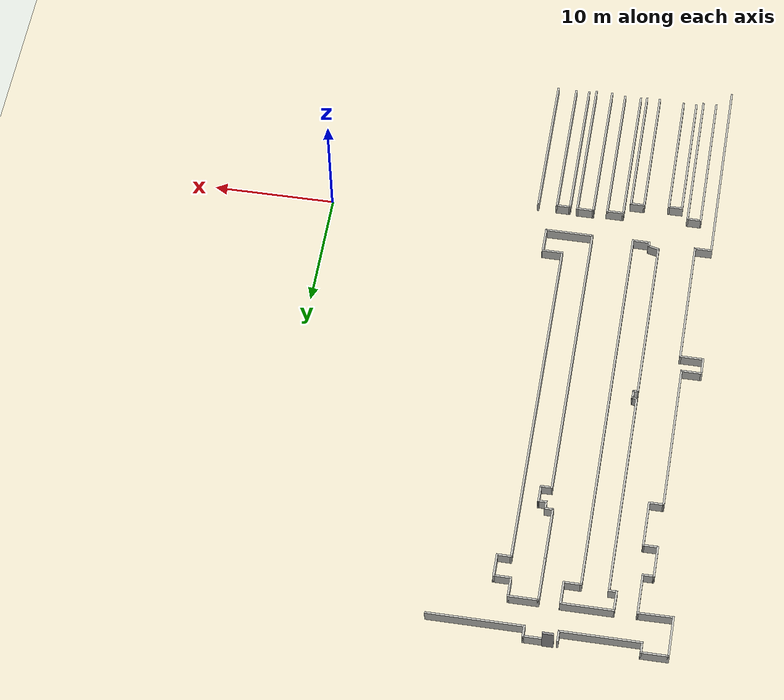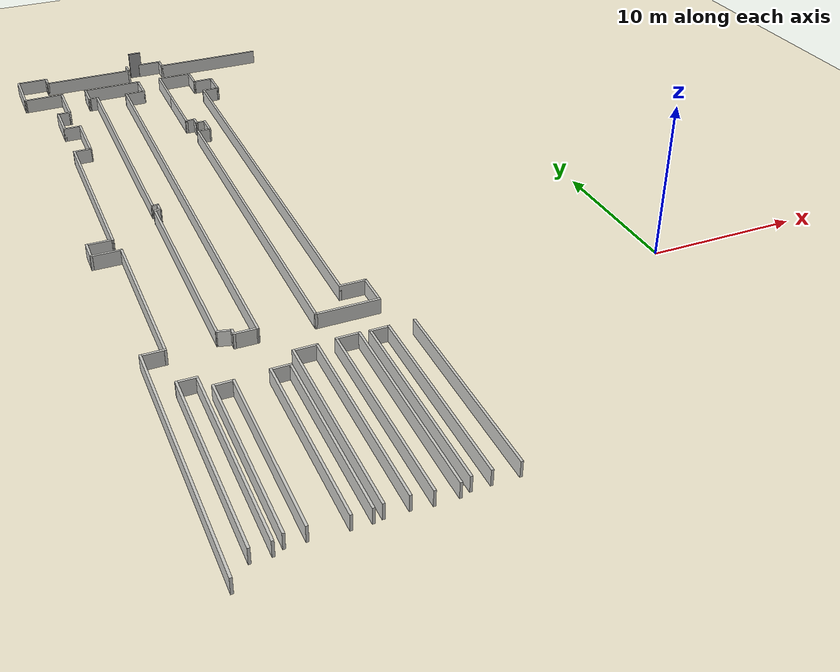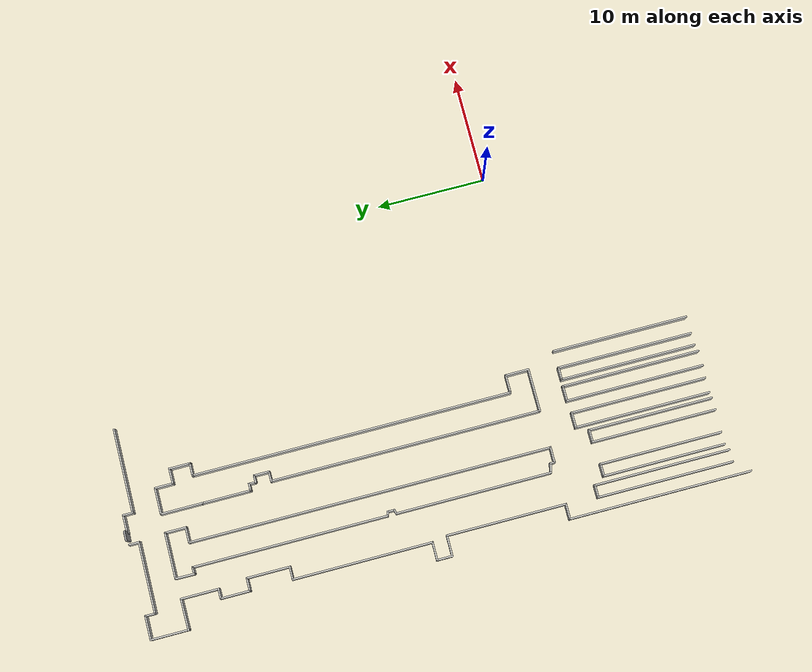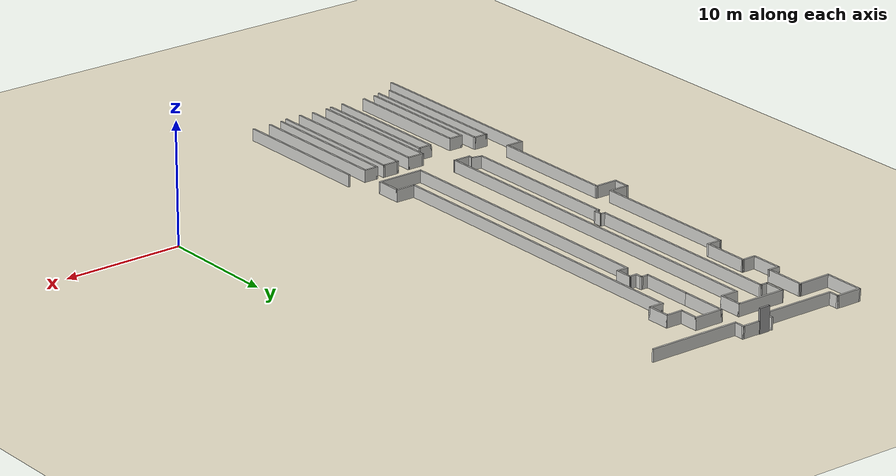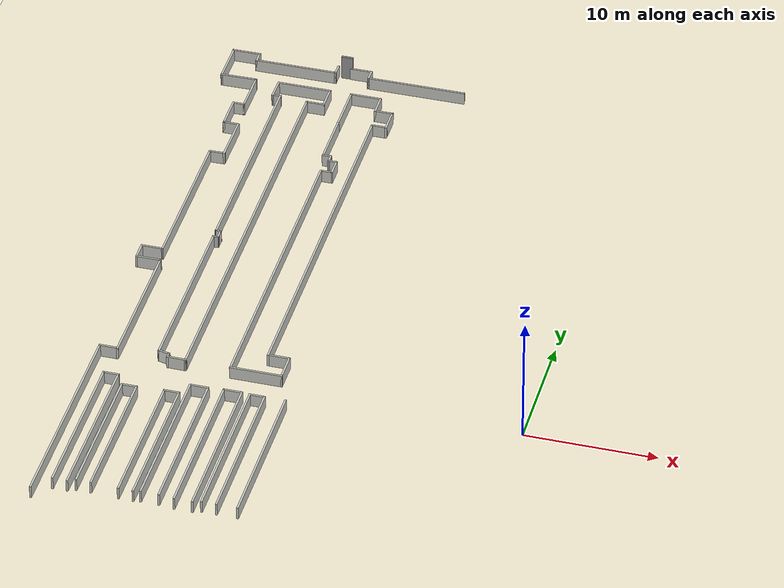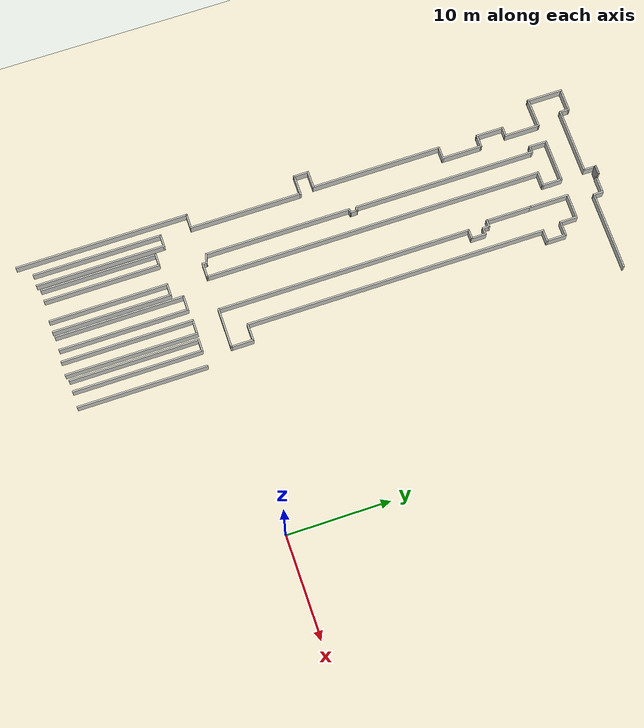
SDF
<sdf version="1.7">
 <world name="default">
  <model name="ground_plane">
   <static>1</static>
   <link name="link">
    <collision name="collision">
     <geometry><plane><normal>0 0 1</normal><size>100 100</size></plane></geometry>
     <surface><friction><ode><mu>100</mu><mu2>50</mu2></ode></friction></surface>
    </collision>
    <visual name="visual">
     <cast_shadows>0</cast_shadows>
     <geometry><plane><normal>0 0 1</normal><size>100 100</size></plane></geometry>
     <material>
      <ambient>0.85 0.82 0.72 1</ambient>
      <diffuse>0.95 0.92 0.82 1</diffuse>
      <specular>0.05 0.05 0.05 1</specular>
     </material>
    </visual>
   </link>
  </model>
  <model name="warehouse">
   <pose>0.004046 2.00696 0 0 -0 0</pose>
   <link name="Door_0">
    <collision name="Door_0_Collision">
     <geometry><box><size>0.9 0.17 2</size></box></geometry>
     <pose>0 0 1 0 -0 0</pose>
    </collision>
    <visual name="Door_0_Visual">
     <pose>0 0 1 0 -0 0</pose>
     <geometry><box><size>0.9 0.17 2</size></box></geometry>
     <material>
      <script><uri>file://media/materials/scripts/gazebo.material</uri><name>Gazebo/Grey</name></script>
     </material>
    </visual>
    <pose>-23.59 36.7086 0 0 -0 0</pose>
   </link>
   <link name="Wall_11">
    <collision name="Wall_11_Collision">
     <geometry><box><size>3.5 0.15 1</size></box></geometry>
     <pose>0 0 0.5 0 -0 0</pose>
    </collision>
    <visual name="Wall_11_Visual">
     <pose>0 0 0.5 0 -0 0</pose>
     <geometry><box><size>3.5 0.15 1</size></box></geometry>
     <material>
      <script><uri>file://media/materials/scripts/gazebo.material</uri><name>Gazebo/CeilingTiled</name></script>
      <ambient>1 1 1 1</ambient>
     </material>
     <meta><layer>0</layer></meta>
    </visual>
    <pose>-32.777 35.0175 0 0 -0 1.5708</pose>
   </link>
   <link name="Wall_111">
    <collision name="Wall_111_Collision">
     <geometry><box><size>16.75 0.15 1</size></box></geometry>
     <pose>0 0 0.5 0 -0 0</pose>
    </collision>
    <visual name="Wall_111_Visual">
     <pose>0 0 0.5 0 -0 0</pose>
     <geometry><box><size>16.75 0.15 1</size></box></geometry>
     <material>
      <script><uri>file://media/materials/scripts/gazebo.material</uri><name>Gazebo/CeilingTiled</name></script>
      <ambient>1 1 1 1</ambient>
     </material>
     <meta><layer>0</layer></meta>
    </visual>
    <pose>-31.983 -9.5225 0 0 -0 1.5708</pose>
   </link>
   <link name="Wall_112">
    <collision name="Wall_112_Collision">
     <geometry><box><size>1.5 0.15 1</size></box></geometry>
     <pose>0 0 0.5 0 -0 0</pose>
    </collision>
    <visual name="Wall_112_Visual">
     <pose>0 0 0.5 0 -0 0</pose>
     <geometry><box><size>1.5 0.15 1</size></box></geometry>
     <material>
      <script><uri>file://media/materials/scripts/gazebo.material</uri><name>Gazebo/CeilingTiled</name></script>
      <ambient>1 1 1 1</ambient>
     </material>
     <meta><layer>0</layer></meta>
    </visual>
    <pose>-31.308 -1.2225 0 0 -0 0</pose>
   </link>
   <link name="Wall_113">
    <collision name="Wall_113_Collision">
     <geometry><box><size>10.9806 0.15 1</size></box></geometry>
     <pose>0 0 0.5 0 -0 0</pose>
    </collision>
    <visual name="Wall_113_Visual">
     <pose>0 0 0.5 0 -0 0</pose>
     <geometry><box><size>10.9806 0.15 1</size></box></geometry>
     <material>
      <script><uri>file://media/materials/scripts/gazebo.material</uri><name>Gazebo/CeilingTiled</name></script>
      <ambient>1 1 1 1</ambient>
     </material>
     <meta><layer>0</layer></meta>
    </visual>
    <pose>-30.6285 4.1925 0 0 -0 1.56997</pose>
   </link>
   <link name="Wall_114">
    <collision name="Wall_114_Collision">
     <geometry><box><size>1.99967 0.15 1</size></box></geometry>
     <pose>0 0 0.5 0 -0 0</pose>
    </collision>
    <visual name="Wall_114_Visual">
     <pose>0 0 0.5 0 -0 0</pose>
     <geometry><box><size>1.99967 0.15 1</size></box></geometry>
     <material>
      <script><uri>file://media/materials/scripts/gazebo.material</uri><name>Gazebo/CeilingTiled</name></script>
      <ambient>1 1 1 1</ambient>
     </material>
     <meta><layer>0</layer></meta>
    </visual>
    <pose>-31.5485 9.608 0 0 -0 3.14105</pose>
   </link>
   <link name="Wall_115">
    <collision name="Wall_115_Collision">
     <geometry><box><size>1.51948 0.15 1</size></box></geometry>
     <pose>0 0 0.5 0 -0 0</pose>
    </collision>
    <visual name="Wall_115_Visual">
     <pose>0 0 0.5 0 -0 0</pose>
     <geometry><box><size>1.51948 0.15 1</size></box></geometry>
     <material>
      <script><uri>file://media/materials/scripts/gazebo.material</uri><name>Gazebo/CeilingTiled</name></script>
      <ambient>1 1 1 1</ambient>
     </material>
     <meta><layer>0</layer></meta>
    </visual>
    <pose>-32.4735 10.293 0 0 -0 1.57153</pose>
   </link>
   <link name="Wall_116">
    <collision name="Wall_116_Collision">
     <geometry><box><size>1.75033 0.15 1</size></box></geometry>
     <pose>0 0 0.5 0 -0 0</pose>
    </collision>
    <visual name="Wall_116_Visual">
     <pose>0 0 0.5 0 -0 0</pose>
     <geometry><box><size>1.75033 0.15 1</size></box></geometry>
     <material>
      <script><uri>file://media/materials/scripts/gazebo.material</uri><name>Gazebo/CeilingTiled</name></script>
      <ambient>1 1 1 1</ambient>
     </material>
     <meta><layer>0</layer></meta>
    </visual>
    <pose>-31.6735 10.9775 0 0 -0 0</pose>
   </link>
   <link name="Wall_117">
    <collision name="Wall_117_Collision">
     <geometry><box><size>12.75 0.15 1</size></box></geometry>
     <pose>0 0 0.5 0 -0 0</pose>
    </collision>
    <visual name="Wall_117_Visual">
     <pose>0 0 0.5 0 -0 0</pose>
     <geometry><box><size>12.75 0.15 1</size></box></geometry>
     <material>
      <script><uri>file://media/materials/scripts/gazebo.material</uri><name>Gazebo/CeilingTiled</name></script>
      <ambient>1 1 1 1</ambient>
     </material>
     <meta><layer>0</layer></meta>
    </visual>
    <pose>-30.878 17.2775 0 0 -0 1.57159</pose>
   </link>
   <link name="Wall_118">
    <collision name="Wall_118_Collision">
     <geometry><box><size>1.27933 0.15 1</size></box></geometry>
     <pose>0 0 0.5 0 -0 0</pose>
    </collision>
    <visual name="Wall_118_Visual">
     <pose>0 0 0.5 0 -0 0</pose>
     <geometry><box><size>1.27933 0.15 1</size></box></geometry>
     <material>
      <script><uri>file://media/materials/scripts/gazebo.material</uri><name>Gazebo/CeilingTiled</name></script>
      <ambient>1 1 1 1</ambient>
     </material>
     <meta><layer>0</layer></meta>
    </visual>
    <pose>-30.3185 23.5775 0 0 -0 0</pose>
   </link>
   <link name="Wall_119">
    <collision name="Wall_119_Collision">
     <geometry><box><size>4 0.15 1</size></box></geometry>
     <pose>0 0 0.5 0 -0 0</pose>
    </collision>
    <visual name="Wall_119_Visual">
     <pose>0 0 0.5 0 -0 0</pose>
     <geometry><box><size>4 0.15 1</size></box></geometry>
     <material>
      <script><uri>file://media/materials/scripts/gazebo.material</uri><name>Gazebo/CeilingTiled</name></script>
      <ambient>1 1 1 1</ambient>
     </material>
     <meta><layer>0</layer></meta>
    </visual>
    <pose>-29.7535 25.5025 0 0 -0 1.57054</pose>
   </link>
   <link name="Wall_12">
    <collision name="Wall_12_Collision">
     <geometry><box><size>2.25 0.15 1</size></box></geometry>
     <pose>0 0 0.5 0 -0 0</pose>
    </collision>
    <visual name="Wall_12_Visual">
     <pose>0 0 0.5 0 -0 0</pose>
     <geometry><box><size>2.25 0.15 1</size></box></geometry>
     <material>
      <script><uri>file://media/materials/scripts/gazebo.material</uri><name>Gazebo/CeilingTiled</name></script>
      <ambient>1 1 1 1</ambient>
     </material>
     <meta><layer>0</layer></meta>
    </visual>
    <pose>-31.727 36.6925 0 0 -0 0</pose>
   </link>
   <link name="Wall_120">
    <collision name="Wall_120_Collision">
     <geometry><box><size>1.28 0.15 1</size></box></geometry>
     <pose>0 0 0.5 0 -0 0</pose>
    </collision>
    <visual name="Wall_120_Visual">
     <pose>0 0 0.5 0 -0 0</pose>
     <geometry><box><size>1.28 0.15 1</size></box></geometry>
     <material>
      <script><uri>file://media/materials/scripts/gazebo.material</uri><name>Gazebo/CeilingTiled</name></script>
      <ambient>1 1 1 1</ambient>
     </material>
     <meta><layer>0</layer></meta>
    </visual>
    <pose>-30.318 27.4275 0 0 -0 3.14159</pose>
   </link>
   <link name="Wall_121">
    <collision name="Wall_121_Collision">
     <geometry><box><size>2.75 0.15 1</size></box></geometry>
     <pose>0 0 0.5 0 -0 0</pose>
    </collision>
    <visual name="Wall_121_Visual">
     <pose>0 0 0.5 0 -0 0</pose>
     <geometry><box><size>2.75 0.15 1</size></box></geometry>
     <material>
      <script><uri>file://media/materials/scripts/gazebo.material</uri><name>Gazebo/CeilingTiled</name></script>
      <ambient>1 1 1 1</ambient>
     </material>
     <meta><layer>0</layer></meta>
    </visual>
    <pose>-30.883 28.7275 0 0 -0 1.5708</pose>
   </link>
   <link name="Wall_122">
    <collision name="Wall_122_Collision">
     <geometry><box><size>1 0.15 1</size></box></geometry>
     <pose>0 0 0.5 0 -0 0</pose>
    </collision>
    <visual name="Wall_122_Visual">
     <pose>0 0 0.5 0 -0 0</pose>
     <geometry><box><size>1 0.15 1</size></box></geometry>
     <material>
      <script><uri>file://media/materials/scripts/gazebo.material</uri><name>Gazebo/CeilingTiled</name></script>
      <ambient>1 1 1 1</ambient>
     </material>
     <meta><layer>0</layer></meta>
    </visual>
    <pose>-30.458 30.0275 0 0 -0 0</pose>
   </link>
   <link name="Wall_123">
    <collision name="Wall_123_Collision">
     <geometry><box><size>3.5 0.15 1</size></box></geometry>
     <pose>0 0 0.5 0 -0 0</pose>
    </collision>
    <visual name="Wall_123_Visual">
     <pose>0 0 0.5 0 -0 0</pose>
     <geometry><box><size>3.5 0.15 1</size></box></geometry>
     <material>
      <script><uri>file://media/materials/scripts/gazebo.material</uri><name>Gazebo/CeilingTiled</name></script>
      <ambient>1 1 1 1</ambient>
     </material>
     <meta><layer>0</layer></meta>
    </visual>
    <pose>-30.033 31.7025 0 0 -0 1.5708</pose>
   </link>
   <link name="Wall_124">
    <collision name="Wall_124_Collision">
     <geometry><box><size>2.89418 0.15 1</size></box></geometry>
     <pose>0 0 0.5 0 -0 0</pose>
    </collision>
    <visual name="Wall_124_Visual">
     <pose>0 0 0.5 0 -0 0</pose>
     <geometry><box><size>2.89418 0.15 1</size></box></geometry>
     <material>
      <script><uri>file://media/materials/scripts/gazebo.material</uri><name>Gazebo/CeilingTiled</name></script>
      <ambient>1 1 1 1</ambient>
     </material>
     <meta><layer>0</layer></meta>
    </visual>
    <pose>-31.405 33.36 0 0 -0 -3.12884</pose>
   </link>
   <link name="Wall_126">
    <collision name="Wall_126_Collision">
     <geometry><box><size>4.25 0.15 1</size></box></geometry>
     <pose>0 0 0.5 0 -0 0</pose>
    </collision>
    <visual name="Wall_126_Visual">
     <pose>0 0 0.5 0 -0 0</pose>
     <geometry><box><size>4.25 0.15 1</size></box></geometry>
     <material>
      <script><uri>file://media/materials/scripts/gazebo.material</uri><name>Gazebo/CeilingTiled</name></script>
      <ambient>1 1 1 1</ambient>
     </material>
     <meta><layer>0</layer></meta>
    </visual>
    <pose>-26.163 33.4445 0 0 -0 0</pose>
   </link>
   <link name="Wall_127">
    <collision name="Wall_127_Collision">
     <geometry><box><size>2 0.15 1</size></box></geometry>
     <pose>0 0 0.5 0 -0 0</pose>
    </collision>
    <visual name="Wall_127_Visual">
     <pose>0 0 0.5 0 -0 0</pose>
     <geometry><box><size>2 0.15 1</size></box></geometry>
     <material>
      <script><uri>file://media/materials/scripts/gazebo.material</uri><name>Gazebo/CeilingTiled</name></script>
      <ambient>1 1 1 1</ambient>
     </material>
     <meta><layer>0</layer></meta>
    </visual>
    <pose>-24.113 32.5195 0 0 -0 -1.5708</pose>
   </link>
   <link name="Wall_128">
    <collision name="Wall_128_Collision">
     <geometry><box><size>1.5 0.15 1</size></box></geometry>
     <pose>0 0 0.5 0 -0 0</pose>
    </collision>
    <visual name="Wall_128_Visual">
     <pose>0 0 0.5 0 -0 0</pose>
     <geometry><box><size>1.5 0.15 1</size></box></geometry>
     <material>
      <script><uri>file://media/materials/scripts/gazebo.material</uri><name>Gazebo/CeilingTiled</name></script>
      <ambient>1 1 1 1</ambient>
     </material>
     <meta><layer>0</layer></meta>
    </visual>
    <pose>-24.788 31.5945 0 0 -0 3.14159</pose>
   </link>
   <link name="Wall_129">
    <collision name="Wall_129_Collision">
     <geometry><box><size>33 0.15 1</size></box></geometry>
     <pose>0 0 0.5 0 -0 0</pose>
    </collision>
    <visual name="Wall_129_Visual">
     <pose>0 0 0.5 0 -0 0</pose>
     <geometry><box><size>33 0.15 1</size></box></geometry>
     <material>
      <script><uri>file://media/materials/scripts/gazebo.material</uri><name>Gazebo/CeilingTiled</name></script>
      <ambient>1 1 1 1</ambient>
     </material>
     <meta><layer>0</layer></meta>
    </visual>
    <pose>-25.463 15.1695 0 0 -0 -1.5708</pose>
   </link>
   <link name="Wall_13">
    <collision name="Wall_13_Collision">
     <geometry><box><size>1 0.15 1</size></box></geometry>
     <pose>0 0 0.5 0 -0 0</pose>
    </collision>
    <visual name="Wall_13_Visual">
     <pose>0 0 0.5 0 -0 0</pose>
     <geometry><box><size>1 0.15 1</size></box></geometry>
     <material>
      <script><uri>file://media/materials/scripts/gazebo.material</uri><name>Gazebo/CeilingTiled</name></script>
      <ambient>1 1 1 1</ambient>
     </material>
     <meta><layer>0</layer></meta>
    </visual>
    <pose>-30.677 36.2675 0 0 -0 -1.5708</pose>
   </link>
   <link name="Wall_130">
    <collision name="Wall_130_Collision">
     <geometry><box><size>1.51536 0.15 1</size></box></geometry>
     <pose>0 0 0.5 0 -0 0</pose>
    </collision>
    <visual name="Wall_130_Visual">
     <pose>0 0 0.5 0 -0 0</pose>
     <geometry><box><size>1.51536 0.15 1</size></box></geometry>
     <material>
      <script><uri>file://media/materials/scripts/gazebo.material</uri><name>Gazebo/CeilingTiled</name></script>
      <ambient>1 1 1 1</ambient>
     </material>
     <meta><layer>0</layer></meta>
    </visual>
    <pose>-26.1454 -1.248 0 0 -0 3.1306</pose>
   </link>
   <link name="Wall_131">
    <collision name="Wall_131_Collision">
     <geometry><box><size>0.5 0.15 1</size></box></geometry>
     <pose>0 0 0.5 0 -0 0</pose>
    </collision>
    <visual name="Wall_131_Visual">
     <pose>0 0 0.5 0 -0 0</pose>
     <geometry><box><size>0.5 0.15 1</size></box></geometry>
     <material>
      <script><uri>file://media/materials/scripts/gazebo.material</uri><name>Gazebo/CeilingTiled</name></script>
      <ambient>1 1 1 1</ambient>
     </material>
     <meta><layer>0</layer></meta>
    </visual>
    <pose>-26.8277 -1.08016 0 0 -0 1.5708</pose>
   </link>
   <link name="Wall_132">
    <collision name="Wall_132_Collision">
     <geometry><box><size>0.981991 0.15 1</size></box></geometry>
     <pose>0 0 0.5 0 -0 0</pose>
    </collision>
    <visual name="Wall_132_Visual">
     <pose>0 0 0.5 0 -0 0</pose>
     <geometry><box><size>0.981991 0.15 1</size></box></geometry>
     <material>
      <script><uri>file://media/materials/scripts/gazebo.material</uri><name>Gazebo/CeilingTiled</name></script>
      <ambient>1 1 1 1</ambient>
     </material>
     <meta><layer>0</layer></meta>
    </visual>
    <pose>-27.2309 -0.788 0 0 -0 2.89263</pose>
   </link>
   <link name="Wall_133">
    <collision name="Wall_133_Collision">
     <geometry><box><size>14.25 0.15 1</size></box></geometry>
     <pose>0 0 0.5 0 -0 0</pose>
    </collision>
    <visual name="Wall_133_Visual">
     <pose>0 0 0.5 0 -0 0</pose>
     <geometry><box><size>14.25 0.15 1</size></box></geometry>
     <material>
      <script><uri>file://media/materials/scripts/gazebo.material</uri><name>Gazebo/CeilingTiled</name></script>
      <ambient>1 1 1 1</ambient>
     </material>
     <meta><layer>0</layer></meta>
    </visual>
    <pose>-27.634 6.3645 0 0 -0 1.5708</pose>
   </link>
   <link name="Wall_134">
    <collision name="Wall_134_Collision">
     <geometry><box><size>0.5 0.15 1</size></box></geometry>
     <pose>0 0 0.5 0 -0 0</pose>
    </collision>
    <visual name="Wall_134_Visual">
     <pose>0 0 0.5 0 -0 0</pose>
     <geometry><box><size>0.5 0.15 1</size></box></geometry>
     <material>
      <script><uri>file://media/materials/scripts/gazebo.material</uri><name>Gazebo/CeilingTiled</name></script>
      <ambient>1 1 1 1</ambient>
     </material>
     <meta><layer>0</layer></meta>
    </visual>
    <pose>-27.465 13.46 0 0 -0 0.262995</pose>
   </link>
   <link name="Wall_135">
    <collision name="Wall_135_Collision">
     <geometry><box><size>0.75 0.15 1</size></box></geometry>
     <pose>0 0 0.5 0 -0 0</pose>
    </collision>
    <visual name="Wall_135_Visual">
     <pose>0 0 0.5 0 -0 0</pose>
     <geometry><box><size>0.75 0.15 1</size></box></geometry>
     <material>
      <script><uri>file://media/materials/scripts/gazebo.material</uri><name>Gazebo/CeilingTiled</name></script>
      <ambient>1 1 1 1</ambient>
     </material>
     <meta><layer>0</layer></meta>
    </visual>
    <pose>-27.296 13.8055 0 0 -0 1.5708</pose>
   </link>
   <link name="Wall_136">
    <collision name="Wall_136_Collision">
     <geometry><box><size>0.5 0.15 1</size></box></geometry>
     <pose>0 0 0.5 0 -0 0</pose>
    </collision>
    <visual name="Wall_136_Visual">
     <pose>0 0 0.5 0 -0 0</pose>
     <geometry><box><size>0.5 0.15 1</size></box></geometry>
     <material>
      <script><uri>file://media/materials/scripts/gazebo.material</uri><name>Gazebo/CeilingTiled</name></script>
      <ambient>1 1 1 1</ambient>
     </material>
     <meta><layer>0</layer></meta>
    </visual>
    <pose>-27.465 14.1505 0 0 -0 2.88136</pose>
   </link>
   <link name="Wall_137">
    <collision name="Wall_137_Collision">
     <geometry><box><size>17.75 0.15 1</size></box></geometry>
     <pose>0 0 0.5 0 -0 0</pose>
    </collision>
    <visual name="Wall_137_Visual">
     <pose>0 0 0.5 0 -0 0</pose>
     <geometry><box><size>17.75 0.15 1</size></box></geometry>
     <material>
      <script><uri>file://media/materials/scripts/gazebo.material</uri><name>Gazebo/CeilingTiled</name></script>
      <ambient>1 1 1 1</ambient>
     </material>
     <meta><layer>0</layer></meta>
    </visual>
    <pose>-27.634 22.9955 0 0 -0 1.5708</pose>
   </link>
   <link name="Wall_138">
    <collision name="Wall_138_Collision">
     <geometry><box><size>0.75 0.15 1</size></box></geometry>
     <pose>0 0 0.5 0 -0 0</pose>
    </collision>
    <visual name="Wall_138_Visual">
     <pose>0 0 0.5 0 -0 0</pose>
     <geometry><box><size>0.75 0.15 1</size></box></geometry>
     <material>
      <script><uri>file://media/materials/scripts/gazebo.material</uri><name>Gazebo/CeilingTiled</name></script>
      <ambient>1 1 1 1</ambient>
     </material>
     <meta><layer>0</layer></meta>
    </visual>
    <pose>-27.934 31.7955 0 0 -0 3.14159</pose>
   </link>
   <link name="Wall_139">
    <collision name="Wall_139_Collision">
     <geometry><box><size>1.79896 0.15 1</size></box></geometry>
     <pose>0 0 0.5 0 -0 0</pose>
    </collision>
    <visual name="Wall_139_Visual">
     <pose>0 0 0.5 0 -0 0</pose>
     <geometry><box><size>1.79896 0.15 1</size></box></geometry>
     <material>
      <script><uri>file://media/materials/scripts/gazebo.material</uri><name>Gazebo/CeilingTiled</name></script>
      <ambient>1 1 1 1</ambient>
     </material>
     <meta><layer>0</layer></meta>
    </visual>
    <pose>-28.2235 32.62 0 0 -0 1.55806</pose>
   </link>
   <link name="Wall_14">
    <collision name="Wall_14_Collision">
     <geometry><box><size>6.5 0.15 1</size></box></geometry>
     <pose>0 0 0.5 0 -0 0</pose>
    </collision>
    <visual name="Wall_14_Visual">
     <pose>0 0 0.5 0 -0 0</pose>
     <geometry><box><size>6.5 0.15 1</size></box></geometry>
     <material>
      <script><uri>file://media/materials/scripts/gazebo.material</uri><name>Gazebo/CeilingTiled</name></script>
      <ambient>1 1 1 1</ambient>
     </material>
     <meta><layer>0</layer></meta>
    </visual>
    <pose>-27.502 35.8425 0 0 -0 0</pose>
   </link>
   <link name="Wall_141">
    <collision name="Wall_141_Collision">
     <geometry><box><size>2.5 0.15 1</size></box></geometry>
     <pose>0 0 0.5 0 -0 0</pose>
    </collision>
    <visual name="Wall_141_Visual">
     <pose>0 0 0.5 0 -0 0</pose>
     <geometry><box><size>2.5 0.15 1</size></box></geometry>
     <material>
      <script><uri>file://media/materials/scripts/gazebo.material</uri><name>Gazebo/CeilingTiled</name></script>
      <ambient>1 1 1 1</ambient>
     </material>
     <meta><layer>0</layer></meta>
    </visual>
    <pose>-21.238 33.4255 0 0 -0 0</pose>
   </link>
   <link name="Wall_142">
    <collision name="Wall_142_Collision">
     <geometry><box><size>1.75 0.15 1</size></box></geometry>
     <pose>0 0 0.5 0 -0 0</pose>
    </collision>
    <visual name="Wall_142_Visual">
     <pose>0 0 0.5 0 -0 0</pose>
     <geometry><box><size>1.75 0.15 1</size></box></geometry>
     <material>
      <script><uri>file://media/materials/scripts/gazebo.material</uri><name>Gazebo/CeilingTiled</name></script>
      <ambient>1 1 1 1</ambient>
     </material>
     <meta><layer>0</layer></meta>
    </visual>
    <pose>-20.063 32.6255 0 0 -0 -1.5708</pose>
   </link>
   <link name="Wall_143">
    <collision name="Wall_143_Collision">
     <geometry><box><size>1.5 0.15 1</size></box></geometry>
     <pose>0 0 0.5 0 -0 0</pose>
    </collision>
    <visual name="Wall_143_Visual">
     <pose>0 0 0.5 0 -0 0</pose>
     <geometry><box><size>1.5 0.15 1</size></box></geometry>
     <material>
      <script><uri>file://media/materials/scripts/gazebo.material</uri><name>Gazebo/CeilingTiled</name></script>
      <ambient>1 1 1 1</ambient>
     </material>
     <meta><layer>0</layer></meta>
    </visual>
    <pose>-19.388 31.8255 0 0 -0 0</pose>
   </link>
   <link name="Wall_144">
    <collision name="Wall_144_Collision">
     <geometry><box><size>2 0.15 1</size></box></geometry>
     <pose>0 0 0.5 0 -0 0</pose>
    </collision>
    <visual name="Wall_144_Visual">
     <pose>0 0 0.5 0 -0 0</pose>
     <geometry><box><size>2 0.15 1</size></box></geometry>
     <material>
      <script><uri>file://media/materials/scripts/gazebo.material</uri><name>Gazebo/CeilingTiled</name></script>
      <ambient>1 1 1 1</ambient>
     </material>
     <meta><layer>0</layer></meta>
    </visual>
    <pose>-18.713 30.9005 0 0 -0 -1.5708</pose>
   </link>
   <link name="Wall_145">
    <collision name="Wall_145_Collision">
     <geometry><box><size>1.25 0.15 1</size></box></geometry>
     <pose>0 0 0.5 0 -0 0</pose>
    </collision>
    <visual name="Wall_145_Visual">
     <pose>0 0 0.5 0 -0 0</pose>
     <geometry><box><size>1.25 0.15 1</size></box></geometry>
     <material>
      <script><uri>file://media/materials/scripts/gazebo.material</uri><name>Gazebo/CeilingTiled</name></script>
      <ambient>1 1 1 1</ambient>
     </material>
     <meta><layer>0</layer></meta>
    </visual>
    <pose>-19.263 29.9755 0 0 -0 3.14159</pose>
   </link>
   <link name="Wall_146">
    <collision name="Wall_146_Collision">
     <geometry><box><size>29.25 0.15 1</size></box></geometry>
     <pose>0 0 0.5 0 -0 0</pose>
    </collision>
    <visual name="Wall_146_Visual">
     <pose>0 0 0.5 0 -0 0</pose>
     <geometry><box><size>29.25 0.15 1</size></box></geometry>
     <material>
      <script><uri>file://media/materials/scripts/gazebo.material</uri><name>Gazebo/CeilingTiled</name></script>
      <ambient>1 1 1 1</ambient>
     </material>
     <meta><layer>0</layer></meta>
    </visual>
    <pose>-19.813 15.4255 0 0 -0 -1.5708</pose>
   </link>
   <link name="Wall_147">
    <collision name="Wall_147_Collision">
     <geometry><box><size>1.75 0.15 1</size></box></geometry>
     <pose>0 0 0.5 0 -0 0</pose>
    </collision>
    <visual name="Wall_147_Visual">
     <pose>0 0 0.5 0 -0 0</pose>
     <geometry><box><size>1.75 0.15 1</size></box></geometry>
     <material>
      <script><uri>file://media/materials/scripts/gazebo.material</uri><name>Gazebo/CeilingTiled</name></script>
      <ambient>1 1 1 1</ambient>
     </material>
     <meta><layer>0</layer></meta>
    </visual>
    <pose>-19.013 0.8755 0 0 -0 0</pose>
   </link>
   <link name="Wall_148">
    <collision name="Wall_148_Collision">
     <geometry><box><size>2.25 0.15 1</size></box></geometry>
     <pose>0 0 0.5 0 -0 0</pose>
    </collision>
    <visual name="Wall_148_Visual">
     <pose>0 0 0.5 0 -0 0</pose>
     <geometry><box><size>2.25 0.15 1</size></box></geometry>
     <material>
      <script><uri>file://media/materials/scripts/gazebo.material</uri><name>Gazebo/CeilingTiled</name></script>
      <ambient>1 1 1 1</ambient>
     </material>
     <meta><layer>0</layer></meta>
    </visual>
    <pose>-18.213 -0.1745 0 0 -0 -1.5708</pose>
   </link>
   <link name="Wall_149">
    <collision name="Wall_149_Collision">
     <geometry><box><size>4 0.15 1</size></box></geometry>
     <pose>0 0 0.5 0 -0 0</pose>
    </collision>
    <visual name="Wall_149_Visual">
     <pose>0 0 0.5 0 -0 0</pose>
     <geometry><box><size>4 0.15 1</size></box></geometry>
     <material>
      <script><uri>file://media/materials/scripts/gazebo.material</uri><name>Gazebo/CeilingTiled</name></script>
      <ambient>1 1 1 1</ambient>
     </material>
     <meta><layer>0</layer></meta>
    </visual>
    <pose>-20.138 -1.2245 0 0 -0 3.14159</pose>
   </link>
   <link name="Wall_15">
    <collision name="Wall_15_Collision">
     <geometry><box><size>1 0.15 1</size></box></geometry>
     <pose>0 0 0.5 0 -0 0</pose>
    </collision>
    <visual name="Wall_15_Visual">
     <pose>0 0 0.5 0 -0 0</pose>
     <geometry><box><size>1 0.15 1</size></box></geometry>
     <material>
      <script><uri>file://media/materials/scripts/gazebo.material</uri><name>Gazebo/CeilingTiled</name></script>
      <ambient>1 1 1 1</ambient>
     </material>
     <meta><layer>0</layer></meta>
    </visual>
    <pose>-24.327 36.2675 0 0 -0 1.5708</pose>
   </link>
   <link name="Wall_150">
    <collision name="Wall_150_Collision">
     <geometry><box><size>24.75 0.15 1</size></box></geometry>
     <pose>0 0 0.5 0 -0 0</pose>
    </collision>
    <visual name="Wall_150_Visual">
     <pose>0 0 0.5 0 -0 0</pose>
     <geometry><box><size>24.75 0.15 1</size></box></geometry>
     <material>
      <script><uri>file://media/materials/scripts/gazebo.material</uri><name>Gazebo/CeilingTiled</name></script>
      <ambient>1 1 1 1</ambient>
     </material>
     <meta><layer>0</layer></meta>
    </visual>
    <pose>-22.063 11.0755 0 0 -0 1.5708</pose>
   </link>
   <link name="Wall_151">
    <collision name="Wall_151_Collision">
     <geometry><box><size>0.992104 0.15 1</size></box></geometry>
     <pose>0 0 0.5 0 -0 0</pose>
    </collision>
    <visual name="Wall_151_Visual">
     <pose>0 0 0.5 0 -0 0</pose>
     <geometry><box><size>0.992104 0.15 1</size></box></geometry>
     <material>
      <script><uri>file://media/materials/scripts/gazebo.material</uri><name>Gazebo/CeilingTiled</name></script>
      <ambient>1 1 1 1</ambient>
     </material>
     <meta><layer>0</layer></meta>
    </visual>
    <pose>-21.642 23.3795 0 0 -0 0.009421</pose>
   </link>
   <link name="Wall_152">
    <collision name="Wall_152_Collision">
     <geometry><box><size>1.5 0.15 1</size></box></geometry>
     <pose>0 0 0.5 0 -0 0</pose>
    </collision>
    <visual name="Wall_152_Visual">
     <pose>0 0 0.5 0 -0 0</pose>
     <geometry><box><size>1.5 0.15 1</size></box></geometry>
     <material>
      <script><uri>file://media/materials/scripts/gazebo.material</uri><name>Gazebo/CeilingTiled</name></script>
      <ambient>1 1 1 1</ambient>
     </material>
     <meta><layer>0</layer></meta>
    </visual>
    <pose>-21.2037 24.0584 0 0 -0 1.5708</pose>
   </link>
   <link name="Wall_153">
    <collision name="Wall_153_Collision">
     <geometry><box><size>0.74212 0.15 1</size></box></geometry>
     <pose>0 0 0.5 0 -0 0</pose>
    </collision>
    <visual name="Wall_153_Visual">
     <pose>0 0 0.5 0 -0 0</pose>
     <geometry><box><size>0.74212 0.15 1</size></box></geometry>
     <material>
      <script><uri>file://media/materials/scripts/gazebo.material</uri><name>Gazebo/CeilingTiled</name></script>
      <ambient>1 1 1 1</ambient>
     </material>
     <meta><layer>0</layer></meta>
    </visual>
    <pose>-21.517 24.7295 0 0 -0 -3.12819</pose>
   </link>
   <link name="Wall_154">
    <collision name="Wall_154_Collision">
     <geometry><box><size>0.75 0.15 1</size></box></geometry>
     <pose>0 0 0.5 0 -0 0</pose>
    </collision>
    <visual name="Wall_154_Visual">
     <pose>0 0 0.5 0 -0 0</pose>
     <geometry><box><size>0.75 0.15 1</size></box></geometry>
     <material>
      <script><uri>file://media/materials/scripts/gazebo.material</uri><name>Gazebo/CeilingTiled</name></script>
      <ambient>1 1 1 1</ambient>
     </material>
     <meta><layer>0</layer></meta>
    </visual>
    <pose>-21.813 25.0255 0 0 -0 1.5708</pose>
   </link>
   <link name="Wall_155">
    <collision name="Wall_155_Collision">
     <geometry><box><size>0.75 0.15 1</size></box></geometry>
     <pose>0 0 0.5 0 -0 0</pose>
    </collision>
    <visual name="Wall_155_Visual">
     <pose>0 0 0.5 0 -0 0</pose>
     <geometry><box><size>0.75 0.15 1</size></box></geometry>
     <material>
      <script><uri>file://media/materials/scripts/gazebo.material</uri><name>Gazebo/CeilingTiled</name></script>
      <ambient>1 1 1 1</ambient>
     </material>
     <meta><layer>0</layer></meta>
    </visual>
    <pose>-22.113 25.3255 0 0 -0 3.14159</pose>
   </link>
   <link name="Wall_156">
    <collision name="Wall_156_Collision">
     <geometry><box><size>4.5 0.15 1</size></box></geometry>
     <pose>0 0 0.5 0 -0 0</pose>
    </collision>
    <visual name="Wall_156_Visual">
     <pose>0 0 0.5 0 -0 0</pose>
     <geometry><box><size>4.5 0.15 1</size></box></geometry>
     <material>
      <script><uri>file://media/materials/scripts/gazebo.material</uri><name>Gazebo/CeilingTiled</name></script>
      <ambient>1 1 1 1</ambient>
     </material>
     <meta><layer>0</layer></meta>
    </visual>
    <pose>-22.413 27.5005 0 0 -0 1.5708</pose>
   </link>
   <link name="Wall_157">
    <collision name="Wall_157_Collision">
     <geometry><box><size>3.9 0.15 1</size></box></geometry>
     <pose>0 0 0.5 0 -0 0</pose>
    </collision>
    <visual name="Wall_157_Visual">
     <pose>0 0 0.5 0 -0 0</pose>
     <geometry><box><size>3.9 0.15 1</size></box></geometry>
     <material>
      <script><uri>file://media/materials/scripts/gazebo.material</uri><name>Gazebo/CeilingTiled</name></script>
      <ambient>1 1 1 1</ambient>
     </material>
     <meta><layer>0</layer></meta>
    </visual>
    <pose>-22.413 31.5505 0 0 -0 1.5708</pose>
   </link>
   <link name="Wall_18">
    <collision name="Wall_18_Collision">
     <geometry><box><size>1.75 0.15 1</size></box></geometry>
     <pose>0 0 0.5 0 -0 0</pose>
    </collision>
    <visual name="Wall_18_Visual">
     <pose>0 0 0.5 0 -0 0</pose>
     <geometry><box><size>1.75 0.15 1</size></box></geometry>
     <material>
      <script><uri>file://media/materials/scripts/gazebo.material</uri><name>Gazebo/CeilingTiled</name></script>
      <ambient>1 1 1 1</ambient>
     </material>
     <meta><layer>0</layer></meta>
    </visual>
    <pose>-22.472 36.6635 0 0 -0 0</pose>
   </link>
   <link name="Wall_19">
    <collision name="Wall_19_Collision">
     <geometry><box><size>1 0.15 1</size></box></geometry>
     <pose>0 0 0.5 0 -0 0</pose>
    </collision>
    <visual name="Wall_19_Visual">
     <pose>0 0 0.5 0 -0 0</pose>
     <geometry><box><size>1 0.15 1</size></box></geometry>
     <material>
      <script><uri>file://media/materials/scripts/gazebo.material</uri><name>Gazebo/CeilingTiled</name></script>
      <ambient>1 1 1 1</ambient>
     </material>
     <meta><layer>0</layer></meta>
    </visual>
    <pose>-21.672 36.2385 0 0 -0 -1.5708</pose>
   </link>
   <link name="Wall_20">
    <collision name="Wall_20_Collision">
     <geometry><box><size>7.75 0.15 1</size></box></geometry>
     <pose>0 0 0.5 0 -0 0</pose>
    </collision>
    <visual name="Wall_20_Visual">
     <pose>0 0 0.5 0 -0 0</pose>
     <geometry><box><size>7.75 0.15 1</size></box></geometry>
     <material>
      <script><uri>file://media/materials/scripts/gazebo.material</uri><name>Gazebo/CeilingTiled</name></script>
      <ambient>1 1 1 1</ambient>
     </material>
     <meta><layer>0</layer></meta>
    </visual>
    <pose>-17.872 35.8135 0 0 -0 0</pose>
   </link>
   <link name="Wall_735">
    <collision name="Wall_735_Collision">
     <geometry><box><size>12.5 0.15 1</size></box></geometry>
     <pose>0 0 0.5 0 -0 0</pose>
    </collision>
    <visual name="Wall_735_Visual">
     <pose>0 0 0.5 0 -0 0</pose>
     <geometry><box><size>12.5 0.15 1</size></box></geometry>
     <material>
      <script><uri>file://media/materials/scripts/gazebo.material</uri><name>Gazebo/CeilingTiled</name></script>
      <ambient>1 1 1 1</ambient>
     </material>
     <meta><layer>0</layer></meta>
    </visual>
    <pose>-17.183 -10.0585 0 0 -0 1.5708</pose>
   </link>
   <link name="Wall_742">
    <collision name="Wall_742_Collision">
     <geometry><box><size>1.25 0.15 1</size></box></geometry>
     <pose>0 0 0.5 0 -0 0</pose>
    </collision>
    <visual name="Wall_742_Visual">
     <pose>0 0 0.5 0 -0 0</pose>
     <geometry><box><size>1.25 0.15 1</size></box></geometry>
     <material>
      <script><uri>file://media/materials/scripts/gazebo.material</uri><name>Gazebo/CeilingTiled</name></script>
      <ambient>1 1 1 1</ambient>
     </material>
     <meta><layer>0</layer></meta>
    </visual>
    <pose>-19.293 -3.8705 0 0 -0 0</pose>
   </link>
   <link name="Wall_743">
    <collision name="Wall_743_Collision">
     <geometry><box><size>12.5 0.15 1</size></box></geometry>
     <pose>0 0 0.5 0 -0 0</pose>
    </collision>
    <visual name="Wall_743_Visual">
     <pose>0 0 0.5 0 -0 0</pose>
     <geometry><box><size>12.5 0.15 1</size></box></geometry>
     <material>
      <script><uri>file://media/materials/scripts/gazebo.material</uri><name>Gazebo/CeilingTiled</name></script>
      <ambient>1 1 1 1</ambient>
     </material>
     <meta><layer>0</layer></meta>
    </visual>
    <pose>-18.743 -10.0455 0 0 -0 -1.5708</pose>
   </link>
   <link name="Wall_748">
    <collision name="Wall_748_Collision">
     <geometry><box><size>12.5 0.15 1</size></box></geometry>
     <pose>0 0 0.5 0 -0 0</pose>
    </collision>
    <visual name="Wall_748_Visual">
     <pose>0 0 0.5 0 -0 0</pose>
     <geometry><box><size>12.5 0.15 1</size></box></geometry>
     <material>
      <script><uri>file://media/materials/scripts/gazebo.material</uri><name>Gazebo/CeilingTiled</name></script>
      <ambient>1 1 1 1</ambient>
     </material>
     <meta><layer>0</layer></meta>
    </visual>
    <pose>-19.843 -10.0455 0 0 -0 1.5708</pose>
   </link>
   <link name="Wall_750">
    <collision name="Wall_750_Collision">
     <geometry><box><size>1.5 0.15 1</size></box></geometry>
     <pose>0 0 0.5 0 -0 0</pose>
    </collision>
    <visual name="Wall_750_Visual">
     <pose>0 0 0.5 0 -0 0</pose>
     <geometry><box><size>1.5 0.15 1</size></box></geometry>
     <material>
      <script><uri>file://media/materials/scripts/gazebo.material</uri><name>Gazebo/CeilingTiled</name></script>
      <ambient>1 1 1 1</ambient>
     </material>
     <meta><layer>0</layer></meta>
    </visual>
    <pose>-21.138 -3.8095 0 0 -0 0</pose>
   </link>
   <link name="Wall_751">
    <collision name="Wall_751_Collision">
     <geometry><box><size>12.75 0.15 1</size></box></geometry>
     <pose>0 0 0.5 0 -0 0</pose>
    </collision>
    <visual name="Wall_751_Visual">
     <pose>0 0 0.5 0 -0 0</pose>
     <geometry><box><size>12.75 0.15 1</size></box></geometry>
     <material>
      <script><uri>file://media/materials/scripts/gazebo.material</uri><name>Gazebo/CeilingTiled</name></script>
      <ambient>1 1 1 1</ambient>
     </material>
     <meta><layer>0</layer></meta>
    </visual>
    <pose>-20.463 -10.1095 0 0 -0 -1.5708</pose>
   </link>
   <link name="Wall_753">
    <collision name="Wall_753_Collision">
     <geometry><box><size>12.75 0.15 1</size></box></geometry>
     <pose>0 0 0.5 0 -0 0</pose>
    </collision>
    <visual name="Wall_753_Visual">
     <pose>0 0 0.5 0 -0 0</pose>
     <geometry><box><size>12.75 0.15 1</size></box></geometry>
     <material>
      <script><uri>file://media/materials/scripts/gazebo.material</uri><name>Gazebo/CeilingTiled</name></script>
      <ambient>1 1 1 1</ambient>
     </material>
     <meta><layer>0</layer></meta>
    </visual>
    <pose>-21.813 -10.1095 0 0 -0 1.5708</pose>
   </link>
   <link name="Wall_762">
    <collision name="Wall_762_Collision">
     <geometry><box><size>1.5 0.15 1</size></box></geometry>
     <pose>0 0 0.5 0 -0 0</pose>
    </collision>
    <visual name="Wall_762_Visual">
     <pose>0 0 0.5 0 -0 0</pose>
     <geometry><box><size>1.5 0.15 1</size></box></geometry>
     <material>
      <script><uri>file://media/materials/scripts/gazebo.material</uri><name>Gazebo/CeilingTiled</name></script>
      <ambient>1 1 1 1</ambient>
     </material>
     <meta><layer>0</layer></meta>
    </visual>
    <pose>-23.643 -3.9235 0 0 -0 0</pose>
   </link>
   <link name="Wall_763">
    <collision name="Wall_763_Collision">
     <geometry><box><size>12.5 0.15 1</size></box></geometry>
     <pose>0 0 0.5 0 -0 0</pose>
    </collision>
    <visual name="Wall_763_Visual">
     <pose>0 0 0.5 0 -0 0</pose>
     <geometry><box><size>12.5 0.15 1</size></box></geometry>
     <material>
      <script><uri>file://media/materials/scripts/gazebo.material</uri><name>Gazebo/CeilingTiled</name></script>
      <ambient>1 1 1 1</ambient>
     </material>
     <meta><layer>0</layer></meta>
    </visual>
    <pose>-22.968 -10.0985 0 0 -0 -1.5708</pose>
   </link>
   <link name="Wall_767">
    <collision name="Wall_767_Collision">
     <geometry><box><size>12.5 0.15 1</size></box></geometry>
     <pose>0 0 0.5 0 -0 0</pose>
    </collision>
    <visual name="Wall_767_Visual">
     <pose>0 0 0.5 0 -0 0</pose>
     <geometry><box><size>12.5 0.15 1</size></box></geometry>
     <material>
      <script><uri>file://media/materials/scripts/gazebo.material</uri><name>Gazebo/CeilingTiled</name></script>
      <ambient>1 1 1 1</ambient>
     </material>
     <meta><layer>0</layer></meta>
    </visual>
    <pose>-24.318 -10.0985 0 0 -0 1.5708</pose>
   </link>
   <link name="Wall_769">
    <collision name="Wall_769_Collision">
     <geometry><box><size>1.25 0.15 1</size></box></geometry>
     <pose>0 0 0.5 0 -0 0</pose>
    </collision>
    <visual name="Wall_769_Visual">
     <pose>0 0 0.5 0 -0 0</pose>
     <geometry><box><size>1.25 0.15 1</size></box></geometry>
     <material>
      <script><uri>file://media/materials/scripts/gazebo.material</uri><name>Gazebo/CeilingTiled</name></script>
      <ambient>1 1 1 1</ambient>
     </material>
     <meta><layer>0</layer></meta>
    </visual>
    <pose>-25.392 -5.0065 0 0 -0 0</pose>
   </link>
   <link name="Wall_770">
    <collision name="Wall_770_Collision">
     <geometry><box><size>11.5 0.15 1</size></box></geometry>
     <pose>0 0 0.5 0 -0 0</pose>
    </collision>
    <visual name="Wall_770_Visual">
     <pose>0 0 0.5 0 -0 0</pose>
     <geometry><box><size>11.5 0.15 1</size></box></geometry>
     <material>
      <script><uri>file://media/materials/scripts/gazebo.material</uri><name>Gazebo/CeilingTiled</name></script>
      <ambient>1 1 1 1</ambient>
     </material>
     <meta><layer>0</layer></meta>
    </visual>
    <pose>-24.842 -10.6815 0 0 -0 -1.5708</pose>
   </link>
   <link name="Wall_772">
    <collision name="Wall_772_Collision">
     <geometry><box><size>11.5 0.15 1</size></box></geometry>
     <pose>0 0 0.5 0 -0 0</pose>
    </collision>
    <visual name="Wall_772_Visual">
     <pose>0 0 0.5 0 -0 0</pose>
     <geometry><box><size>11.5 0.15 1</size></box></geometry>
     <material>
      <script><uri>file://media/materials/scripts/gazebo.material</uri><name>Gazebo/CeilingTiled</name></script>
      <ambient>1 1 1 1</ambient>
     </material>
     <meta><layer>0</layer></meta>
    </visual>
    <pose>-25.942 -10.6815 0 0 -0 1.5708</pose>
   </link>
   <link name="Wall_774">
    <collision name="Wall_774_Collision">
     <geometry><box><size>12.5 0.15 1</size></box></geometry>
     <pose>0 0 0.5 0 -0 0</pose>
    </collision>
    <visual name="Wall_774_Visual">
     <pose>0 0 0.5 0 -0 0</pose>
     <geometry><box><size>12.5 0.15 1</size></box></geometry>
     <material>
      <script><uri>file://media/materials/scripts/gazebo.material</uri><name>Gazebo/CeilingTiled</name></script>
      <ambient>1 1 1 1</ambient>
     </material>
     <meta><layer>0</layer></meta>
    </visual>
    <pose>-30.785 -10.3265 0 0 -0 -1.5708</pose>
   </link>
   <link name="Wall_776">
    <collision name="Wall_776_Collision">
     <geometry><box><size>12.5 0.15 1</size></box></geometry>
     <pose>0 0 0.5 0 -0 0</pose>
    </collision>
    <visual name="Wall_776_Visual">
     <pose>0 0 0.5 0 -0 0</pose>
     <geometry><box><size>12.5 0.15 1</size></box></geometry>
     <material>
      <script><uri>file://media/materials/scripts/gazebo.material</uri><name>Gazebo/CeilingTiled</name></script>
      <ambient>1 1 1 1</ambient>
     </material>
     <meta><layer>0</layer></meta>
    </visual>
    <pose>-29.685 -10.3265 0 0 -0 1.5708</pose>
   </link>
   <link name="Wall_777">
    <collision name="Wall_777_Collision">
     <geometry><box><size>1.25 0.15 1</size></box></geometry>
     <pose>0 0 0.5 0 -0 0</pose>
    </collision>
    <visual name="Wall_777_Visual">
     <pose>0 0 0.5 0 -0 0</pose>
     <geometry><box><size>1.25 0.15 1</size></box></geometry>
     <material>
      <script><uri>file://media/materials/scripts/gazebo.material</uri><name>Gazebo/CeilingTiled</name></script>
      <ambient>1 1 1 1</ambient>
     </material>
     <meta><layer>0</layer></meta>
    </visual>
    <pose>-30.235 -4.1515 0 0 -0 3.14159</pose>
   </link>
   <link name="Wall_779">
    <collision name="Wall_779_Collision">
     <geometry><box><size>1.25 0.15 1</size></box></geometry>
     <pose>0 0 0.5 0 -0 0</pose>
    </collision>
    <visual name="Wall_779_Visual">
     <pose>0 0 0.5 0 -0 0</pose>
     <geometry><box><size>1.25 0.15 1</size></box></geometry>
     <material>
      <script><uri>file://media/materials/scripts/gazebo.material</uri><name>Gazebo/CeilingTiled</name></script>
      <ambient>1 1 1 1</ambient>
     </material>
     <meta><layer>0</layer></meta>
    </visual>
    <pose>-28.554 -5.1485 0 0 -0 0</pose>
   </link>
   <link name="Wall_780">
    <collision name="Wall_780_Collision">
     <geometry><box><size>11.25 0.15 1</size></box></geometry>
     <pose>0 0 0.5 0 -0 0</pose>
    </collision>
    <visual name="Wall_780_Visual">
     <pose>0 0 0.5 0 -0 0</pose>
     <geometry><box><size>11.25 0.15 1</size></box></geometry>
     <material>
      <script><uri>file://media/materials/scripts/gazebo.material</uri><name>Gazebo/CeilingTiled</name></script>
      <ambient>1 1 1 1</ambient>
     </material>
     <meta><layer>0</layer></meta>
    </visual>
    <pose>-28.004 -10.6985 0 0 -0 -1.5708</pose>
   </link>
   <link name="Wall_782">
    <collision name="Wall_782_Collision">
     <geometry><box><size>11.25 0.15 1</size></box></geometry>
     <pose>0 0 0.5 0 -0 0</pose>
    </collision>
    <visual name="Wall_782_Visual">
     <pose>0 0 0.5 0 -0 0</pose>
     <geometry><box><size>11.25 0.15 1</size></box></geometry>
     <material>
      <script><uri>file://media/materials/scripts/gazebo.material</uri><name>Gazebo/CeilingTiled</name></script>
      <ambient>1 1 1 1</ambient>
     </material>
     <meta><layer>0</layer></meta>
    </visual>
    <pose>-29.104 -10.6985 0 0 -0 1.5708</pose>
   </link>
   <static>1</static>
  </model>
 </world>
</sdf>
